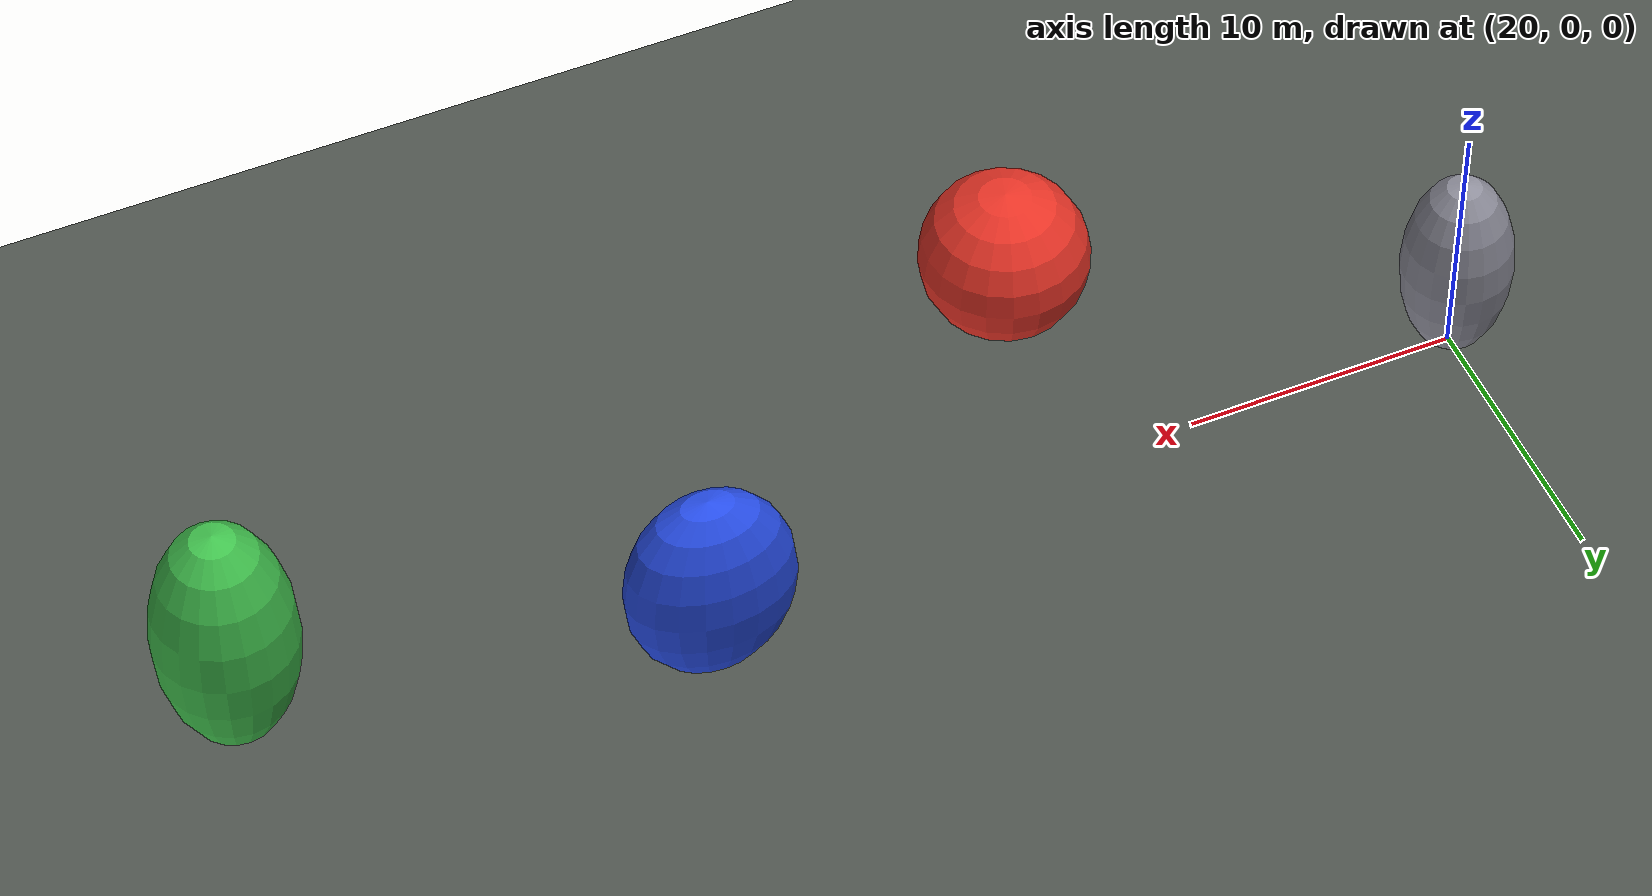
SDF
<?xml version="1.0" ?>
<sdf version="1.10">
  <world name="my_rgl_world_osci">
    <!-- This world is only for the known-obstacle oscillation case.  Spawn the
         existing PX4 x500 + RGL model into it with the normal simulation launch. -->
    <plugin filename="gz-sim-physics-system" name="gz::sim::systems::Physics"/>
    <plugin filename="gz-sim-user-commands-system" name="gz::sim::systems::UserCommands"/>
    <plugin filename="gz-sim-scene-broadcaster-system" name="gz::sim::systems::SceneBroadcaster"/>
    <plugin filename="gz-sim-sensors-system" name="gz::sim::systems::Sensors">
      <render_engine>ogre2</render_engine>
    </plugin>

    <physics name="1ms" type="ignored">
      <max_step_size>0.001</max_step_size>
      <real_time_factor>1.0</real_time_factor>
    </physics>

    <scene>
      <ambient>0.4 0.4 0.4 1</ambient>
      <background>0.7 0.7 0.7 1</background>
      <shadows>true</shadows>
    </scene>

    <light name="sun" type="directional">
      <cast_shadows>true</cast_shadows>
      <pose>0 0 10 0 0 0</pose>
      <diffuse>0.8 0.8 0.8 1</diffuse>
      <specular>0.2 0.2 0.2 1</specular>
      <direction>-0.5 0.1 -0.9</direction>
    </light>

    <model name="ground_plane">
      <static>true</static>
      <link name="link">
        <collision name="collision">
          <geometry><plane><normal>0 0 1</normal><size>200 200</size></plane></geometry>
        </collision>
        <visual name="visual">
          <geometry><plane><normal>0 0 1</normal><size>200 200</size></plane></geometry>
          <material>
            <ambient>0.22 0.24 0.22 1</ambient>
            <diffuse>0.30 0.32 0.30 1</diffuse>
          </material>
        </visual>
      </link>
    </model>

    <!-- YAML obstacle 1: static center=[20,0,4], axes=[2,2,4]. -->
    <model name="obstacle_1">
      <static>true</static>
      <pose>20 0 4 0 0 0</pose>
      <link name="link">
        <collision name="collision">
          <geometry><ellipsoid><radii>2 2 4</radii></ellipsoid></geometry>
        </collision>
        <visual name="visual">
          <geometry><ellipsoid><radii>2 2 4</radii></ellipsoid></geometry>
          <material><diffuse>0.55 0.55 0.60 1</diffuse></material>
        </visual>
      </link>
    </model>

    <!-- YAML obstacle 2: y(t)=-5+4*sin(0.25*t), radius=3. -->
    <model name="obstacle_2">
      <static>false</static>
      <pose>35 -5 6 0 0 0</pose>
      <link name="link">
        <kinematic>true</kinematic>
        <gravity>false</gravity>
        <collision name="collision">
          <geometry><sphere><radius>3</radius></sphere></geometry>
        </collision>
        <visual name="visual">
          <geometry><sphere><radius>3</radius></sphere></geometry>
          <material><diffuse>0.90 0.20 0.15 1</diffuse></material>
        </visual>
      </link>
      <plugin filename="libifds_obstacle_oscillator.so" name="ifds::sim::ObstacleOscillator">
        <amplitude_y>4.0</amplitude_y>
        <angular_speed>0.25</angular_speed>
        <phase>0.0</phase>
      </plugin>
    </model>

    <!-- YAML obstacle 3: y(t)=5+5*sin(0.20*t+pi/2), axes=[3,2,4]. -->
    <model name="obstacle_3">
      <static>false</static>
      <pose>50 5 7 0 0 0</pose>
      <link name="link">
        <kinematic>true</kinematic>
        <gravity>false</gravity>
        <collision name="collision">
          <geometry><ellipsoid><radii>3 2 4</radii></ellipsoid></geometry>
        </collision>
        <visual name="visual">
          <geometry><ellipsoid><radii>3 2 4</radii></ellipsoid></geometry>
          <material><diffuse>0.15 0.30 0.90 1</diffuse></material>
        </visual>
      </link>
      <plugin filename="libifds_obstacle_oscillator.so" name="ifds::sim::ObstacleOscillator">
        <amplitude_y>5.0</amplitude_y>
        <angular_speed>0.20</angular_speed>
        <phase>1.57079632679</phase>
      </plugin>
    </model>

    <!-- YAML obstacle 4: static center=[65,0,6], axes=[2.5,2.5,5]. -->
    <model name="obstacle_4">
      <static>true</static>
      <pose>65 0 6 0 0 0</pose>
      <link name="link">
        <collision name="collision">
          <geometry><ellipsoid><radii>2.5 2.5 5</radii></ellipsoid></geometry>
        </collision>
        <visual name="visual">
          <geometry><ellipsoid><radii>2.5 2.5 5</radii></ellipsoid></geometry>
          <material><diffuse>0.25 0.75 0.30 1</diffuse></material>
        </visual>
      </link>
    </model>
  </world>
</sdf>
